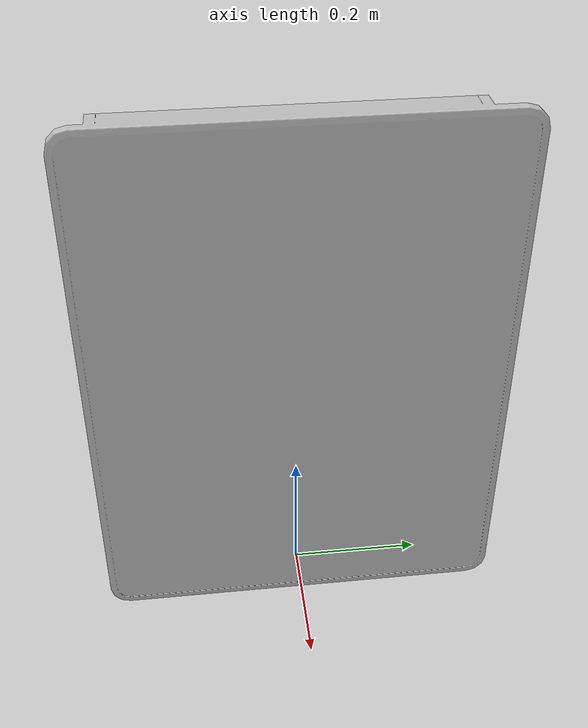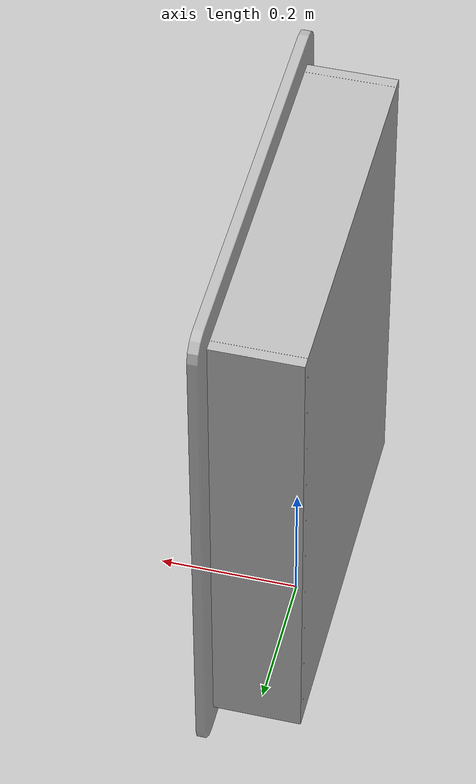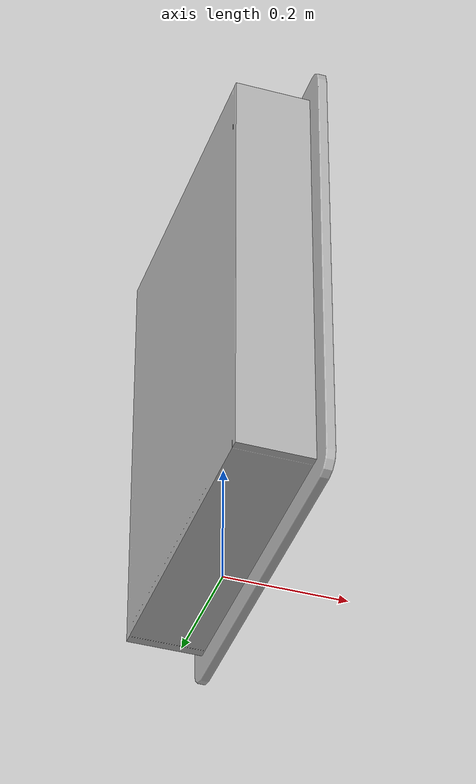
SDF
<?xml version='1.0'?>
<sdf version='1.4'>
  <model name='s__538'>
    <pose>0 0 0 0 0 0</pose>
    <static>true</static>
    <link name='link'>
      <collision name='collision'>
        <pose>0 0 0 0 0 0</pose>
        <geometry>
          <box>
            <size>0.139969 0.61 2</size>
          </box>
        </geometry>
      </collision>
      <visual name='visual'>
        <pose>0 0 0 0 0 0</pose>
        <geometry>
          <mesh><uri>model://s__538/s__538.dae</uri></mesh>
        </geometry>
      </visual>
    </link>
  </model>
</sdf>
